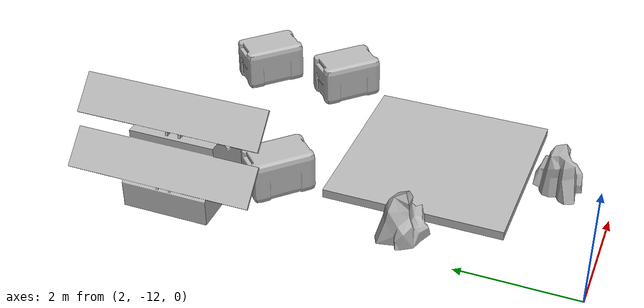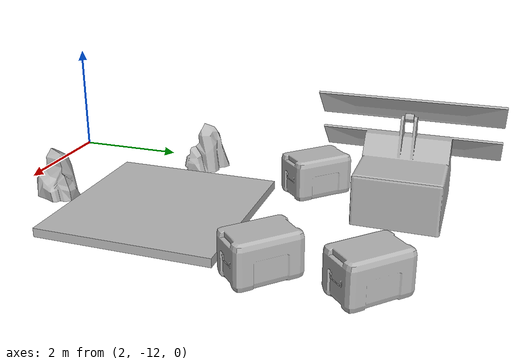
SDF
<sdf version="1.6">
 <world name="SRC_finals">
  <include>
   <pose>3.2186596061476704
        -5.2043216187487324
        0
        0
        0
        1.5707963267948968</pose>
   <uri>model://solar_array</uri>
  </include>
  <include>
   <name>mars_crate_long_6</name>
   <pose>6.092659606147671
      -5.2043216187487324
      0
      0
      0
      -0.7853981633974484</pose>
   <uri>model://mars_crate_long</uri>
  </include>
  <include>
   <name>mars_crate_long_7</name>
   <pose>6.092659606147671
      -6.728321618748732
      0
      0
      0
      -0.7853981633974484</pose>
   <uri>model://mars_crate_long</uri>
  </include>
  <include>
   <name>mars_crate_long_8</name>
   <pose>2.9686596061476704
      -6.728321618748732
      0
      0
      0
      2.356194490192345</pose>
   <uri>model://mars_crate_long</uri>
  </include>
  <include>
   <name>walkway_8</name>
   <pose>4.530659606147671
      -9.014321618748731
      -0.052151
      0
      0
      -1.2246467991473532e-16</pose>
   <uri>model://walkway_finish_adjacent</uri>
  </include>
  <include>
   <name>mars_rock_2_9</name>
   <pose>2.5066596061476707
      -9.014321618748731
      0
      0
      0
      1.5707963267948963</pose>
   <uri>model://mars_rock_2</uri>
  </include>
  <include>
   <name>mars_rock_2_10</name>
   <pose>4.530659606147671
      -11.038321618748732
      0
      0
      0
      3.141592653589793</pose>
   <uri>model://mars_rock_2</uri>
  </include>
 </world>
</sdf>
